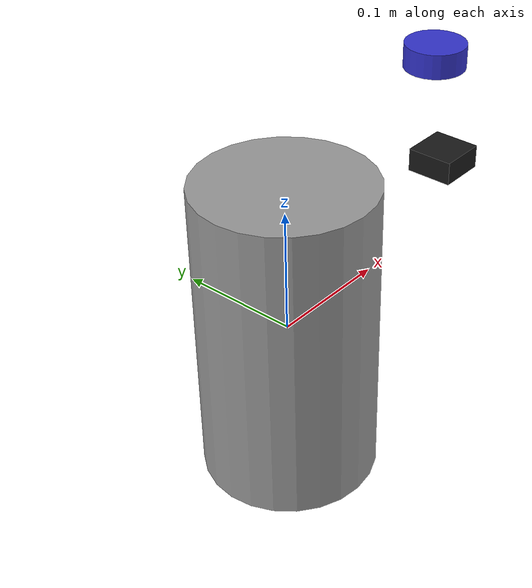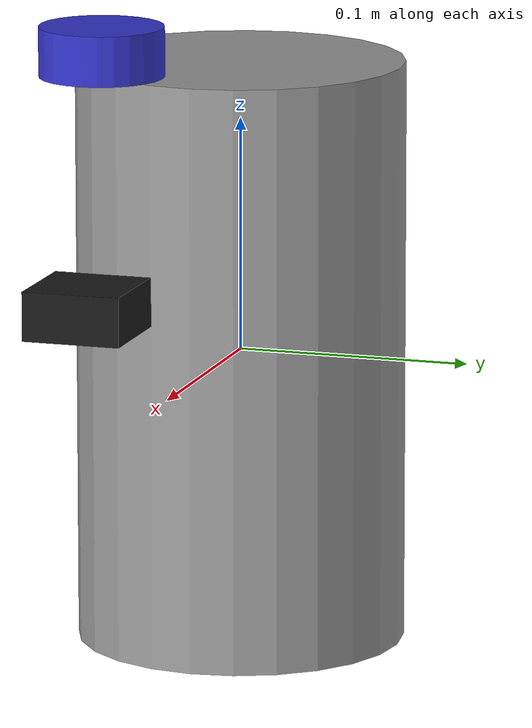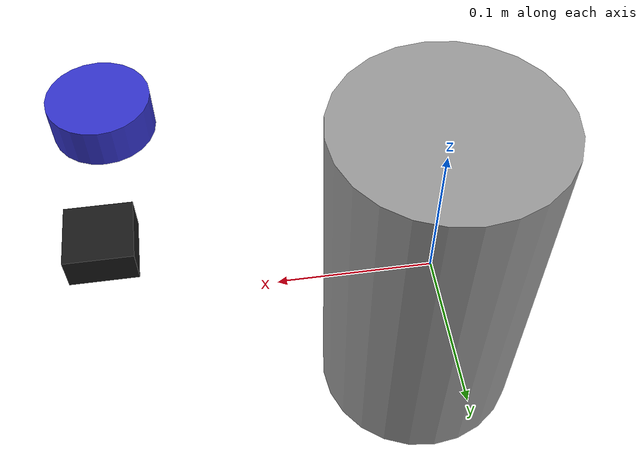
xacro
<?xml version="1.0"?>
<robot name="inpipe_bot" xmlns:xacro="http://www.ros.org/wiki/xacro">

  <!-- Base -->
  <link name="base_link">
    <inertial>
      <mass value="5.0"/>
      <origin xyz="0 0 0" rpy="0 0 0"/>
      <inertia ixx="0.04" iyy="0.04" izz="0.04" ixy="0" ixz="0" iyz="0"/>
    </inertial>
    <visual>
      <geometry><cylinder radius="0.07" length="0.25"/></geometry>
      <origin xyz="0 0 0" rpy="0 0 0"/>
      <material name="gray">
        <color rgba="0.6 0.6 0.6 1.0"/>
      </material>
    </visual>
    <collision>
      <geometry><cylinder radius="0.07" length="0.25"/></geometry>
    </collision>
  </link>

  <!-- Camera -->
  <link name="camera_link">
    <inertial>
      <mass value="0.25"/>
      <origin xyz="0 0 0" rpy="0 0 0"/>
      <inertia ixx="0.0002" iyy="0.0002" izz="0.0002" ixy="0" ixz="0" iyz="0"/>
    </inertial>
    <visual>
      <geometry><box size="0.04 0.04 0.02"/></geometry>
      <origin xyz="0.10 0 0.03" rpy="0 0 0"/>
      <material name="black"><color rgba="0.1 0.1 0.1 1.0"/></material>
    </visual>
  </link>

  <joint name="base_to_camera" type="fixed">
    <origin xyz="0.10 0 0.03" rpy="0 0 0"/>
    <parent link="base_link"/>
    <child link="camera_link"/>
  </joint>

  <!-- Lidar -->
  <link name="lidar_link">
    <inertial>
      <mass value="0.2"/>
      <origin xyz="0 0 0" rpy="0 0 0"/>
      <inertia ixx="0.0002" iyy="0.0002" izz="0.0002" ixy="0" ixz="0" iyz="0"/>
    </inertial>
    <visual>
      <geometry><cylinder radius="0.025" length="0.02"/></geometry>
      <origin xyz="0.09 0 0.08" rpy="0 0 0"/>
      <material name="blue"><color rgba="0.2 0.2 0.8 1.0"/></material>
    </visual>
  </link>

  <joint name="base_to_lidar" type="fixed">
    <origin xyz="0.09 0 0.08" rpy="0 0 0"/>
    <parent link="base_link"/>
    <child link="lidar_link"/>
  </joint>

  <!-- Gazebo: camera sensor -->
  <gazebo reference="camera_link">
    <sensor name="front_camera" type="camera">
      <always_on>true</always_on>
      <update_rate>30</update_rate>
      <visualize>true</visualize>
      <camera name="rgb">
        <horizontal_fov>1.047</horizontal_fov> <!-- 60 deg -->
        <image>
          <width>640</width><height>480</height><format>R8G8B8</format>
        </image>
        <clip><near>0.05</near><far>20.0</far></clip>
      </camera>
      <plugin name="gazebo_ros_camera" filename="libgazebo_ros_camera.so">
        <ros>
          <namespace>/inpipe_bot</namespace>
          <remapping>image:=/camera/image_raw</remapping>
          <remapping>camera_info:=/camera/camera_info</remapping>
        </ros>
        <frame_name>camera_link</frame_name>
      </plugin>
    </sensor>
  </gazebo>

  <!-- Gazebo: lidar sensor (2D, planar) -->
  <gazebo reference="lidar_link">
    <sensor name="front_laser" type="ray">
      <pose>0 0 0 0 0 0</pose>
      <always_on>true</always_on>
      <update_rate>20</update_rate>
      <ray>
        <scan>
          <horizontal>
            <samples>720</samples>
            <resolution>1</resolution>
            <min_angle>-1.5708</min_angle> <!-- -90 deg -->
            <max_angle>1.5708</max_angle>  <!-- +90 deg -->
          </horizontal>
        </scan>
        <range><min>0.05</min><max>15.0</max></range>
        <noise><type>gaussian</type><mean>0.0</mean><stddev>0.01</stddev></noise>
      </ray>
      <plugin name="gazebo_ros_ray_sensor" filename="libgazebo_ros_ray_sensor.so">
        <ros>
          <namespace>/inpipe_bot</namespace>
          <remapping>scan:=/scan</remapping>
        </ros>
        <frame_name>lidar_link</frame_name>
      </plugin>
    </sensor>
  </gazebo>

  <!-- Publish TF -->
  <gazebo>
    <plugin name="tf_publisher" filename="libgazebo_ros_state.so">
      <ros><namespace>/inpipe_bot</namespace></ros>
      <publish_tf>true</publish_tf>
      <update_rate>50</update_rate>
    </plugin>
  </gazebo>
</robot>
